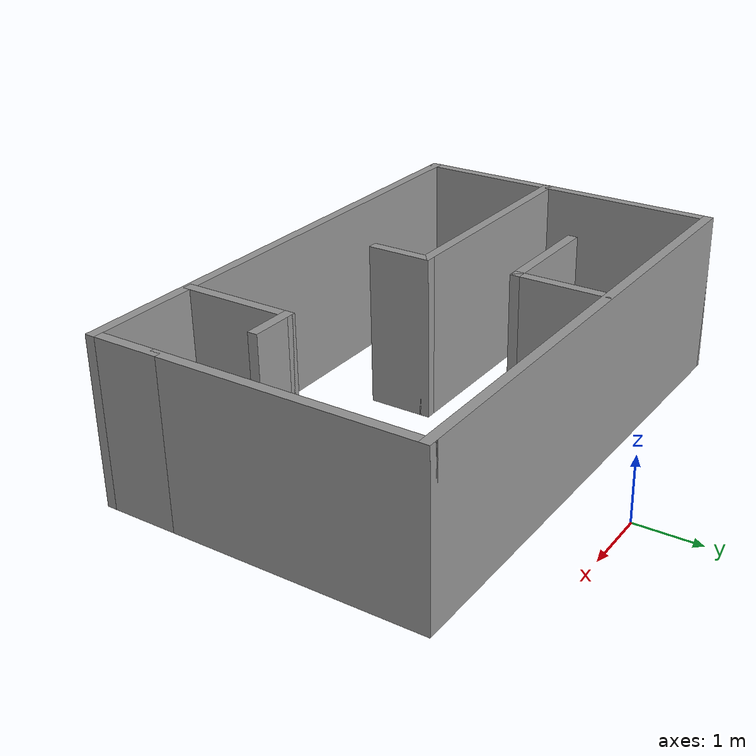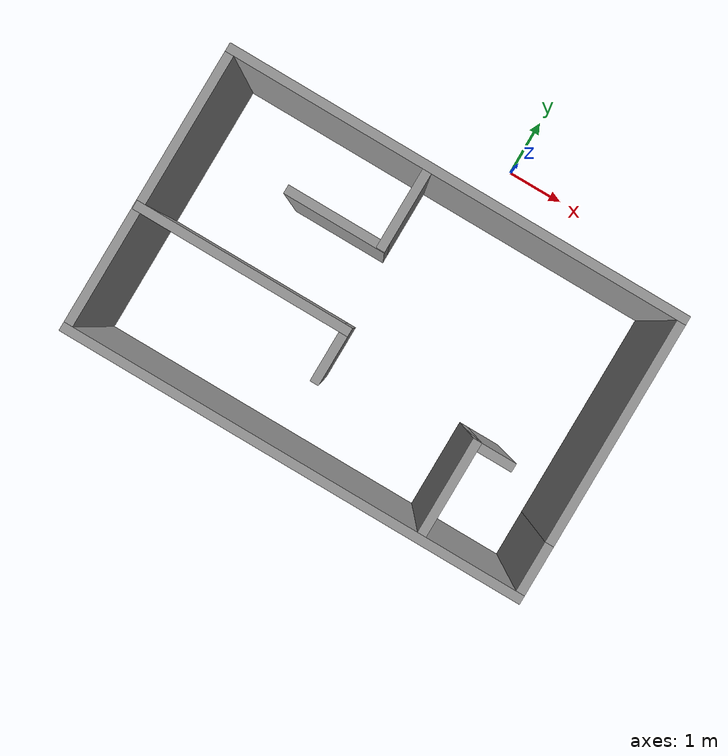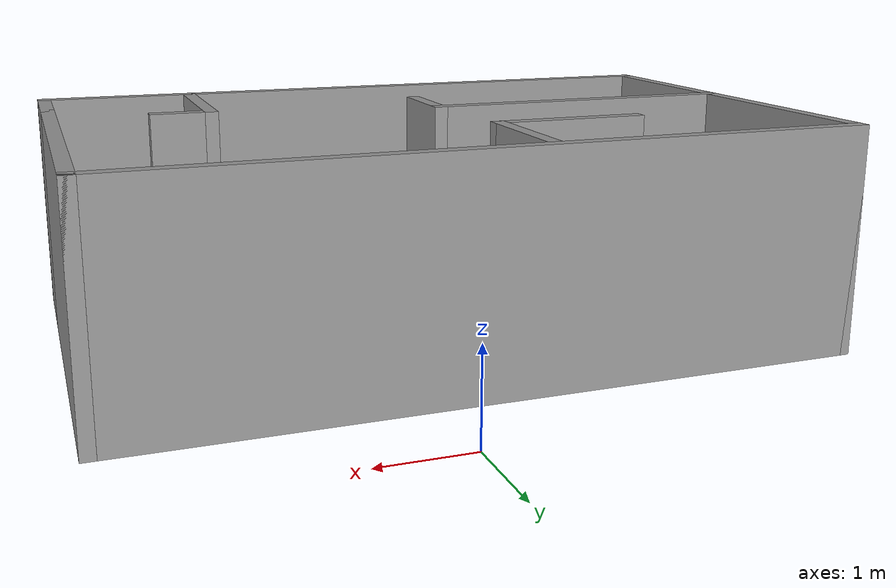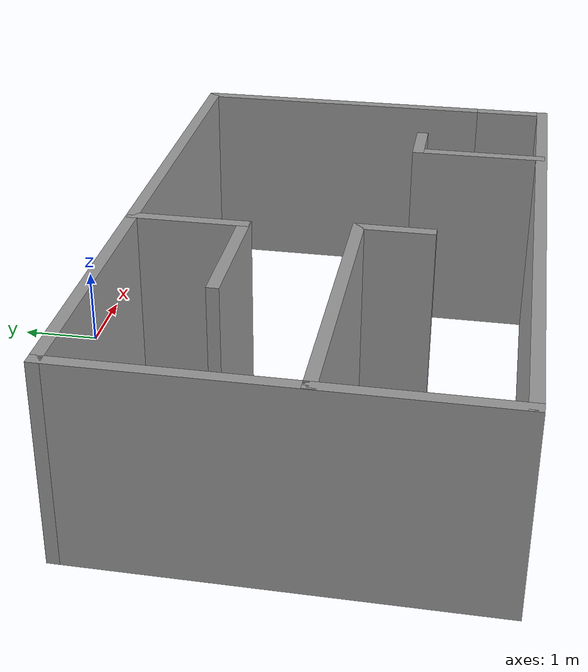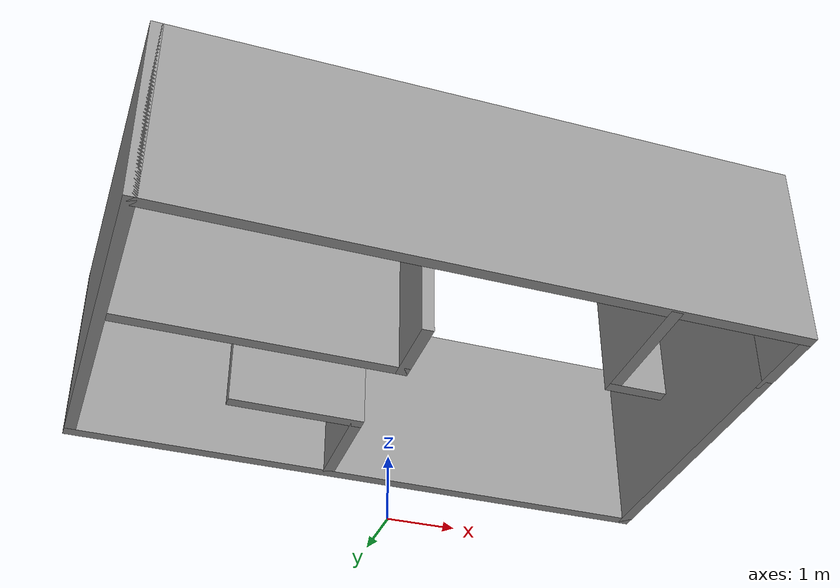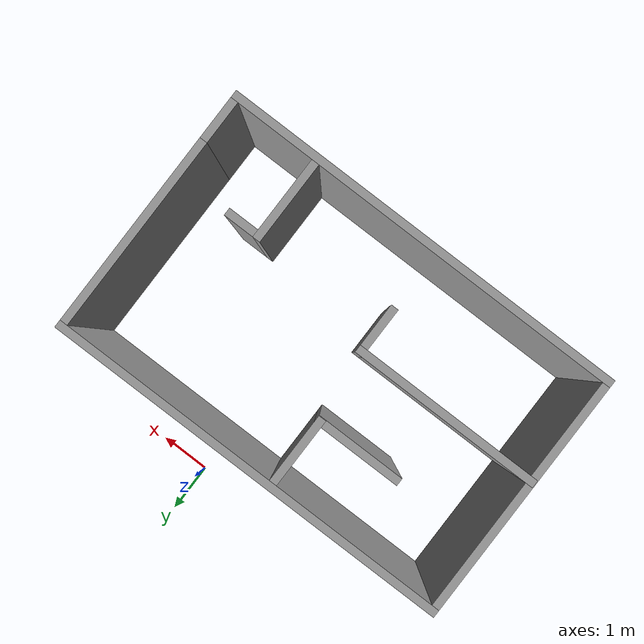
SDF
<?xml version='1.0'?>
<sdf version='1.7'>
  <model name='room'>
    <pose>-0.685 -2.9725 0 0 -0 0</pose>
    <link name='Wall_1'>
      <collision name='Wall_1_Collision'>
        <geometry>
          <box>
            <size>8 0.15 2.5</size>
          </box>
        </geometry>
        <pose>0 0 1.25 0 -0 0</pose>
      </collision>
      <visual name='Wall_1_Visual'>
        <pose>0 0 1.25 0 -0 0</pose>
        <geometry>
          <box>
            <size>8 0.15 2.5</size>
          </box>
        </geometry>
        <material>
          <script>
            <uri>file://media/materials/scripts/gazebo.material</uri>
            <name>Gazebo/Grey</name>
          </script>
          <ambient>1 1 1 1</ambient>
        </material>
        <meta>
          <layer>0</layer>
        </meta>
      </visual>
      <pose>0 1.9525 0 0 -0 0</pose>
    </link>
    <link name='Wall_10'>
      <collision name='Wall_10_Collision'>
        <geometry>
          <box>
            <size>8 0.15 2.5</size>
          </box>
        </geometry>
        <pose>0 0 1.25 0 -0 0</pose>
      </collision>
      <visual name='Wall_10_Visual'>
        <pose>0 0 1.25 0 -0 0</pose>
        <geometry>
          <box>
            <size>8 0.15 2.5</size>
          </box>
        </geometry>
        <material>
          <script>
            <uri>file://media/materials/scripts/gazebo.material</uri>
            <name>Gazebo/Grey</name>
          </script>
          <ambient>1 1 1 1</ambient>
        </material>
        <meta>
          <layer>0</layer>
        </meta>
      </visual>
      <pose>0 -2.8975 0 0 -0 0</pose>
    </link>
    <link name='Wall_12'>
      <collision name='Wall_12_Collision'>
        <geometry>
          <box>
            <size>1.5 0.15 2.5</size>
          </box>
        </geometry>
        <pose>0 0 1.25 0 -0 0</pose>
      </collision>
      <visual name='Wall_12_Visual'>
        <pose>0 0 1.25 0 -0 0</pose>
        <geometry>
          <box>
            <size>1.5 0.15 2.5</size>
          </box>
        </geometry>
        <material>
          <script>
            <uri>file://media/materials/scripts/gazebo.material</uri>
            <name>Gazebo/Grey</name>
          </script>
          <ambient>1 1 1 1</ambient>
        </material>
        <meta>
          <layer>0</layer>
        </meta>
      </visual>
      <pose>-0.49194 1.26027 0 0 -0 -1.5708</pose>
    </link>
    <link name='Wall_13'>
      <collision name='Wall_13_Collision'>
        <geometry>
          <box>
            <size>1.75 0.15 2.5</size>
          </box>
        </geometry>
        <pose>0 0 1.25 0 -0 0</pose>
      </collision>
      <visual name='Wall_13_Visual'>
        <pose>0 0 1.25 0 -0 0</pose>
        <geometry>
          <box>
            <size>1.75 0.15 2.5</size>
          </box>
        </geometry>
        <material>
          <script>
            <uri>file://media/materials/scripts/gazebo.material</uri>
            <name>Gazebo/Grey</name>
          </script>
          <ambient>1 1 1 1</ambient>
        </material>
        <meta>
          <layer>0</layer>
        </meta>
      </visual>
      <pose>-1.29194 0.575271 0 0 -0 3.14159</pose>
    </link>
    <link name='Wall_15'>
      <collision name='Wall_15_Collision'>
        <geometry>
          <box>
            <size>3.7413 0.15 2.5</size>
          </box>
        </geometry>
        <pose>0 0 1.25 0 -0 0</pose>
      </collision>
      <visual name='Wall_15_Visual'>
        <pose>0 0 1.25 0 -0 0</pose>
        <geometry>
          <box>
            <size>3.7413 0.15 2.5</size>
          </box>
        </geometry>
        <material>
          <script>
            <uri>file://media/materials/scripts/gazebo.material</uri>
            <name>Gazebo/Grey</name>
          </script>
          <ambient>1 1 1 1</ambient>
        </material>
        <meta>
          <layer>0</layer>
        </meta>
      </visual>
      <pose>-2.11822 -0.777512 0 0 -0 0</pose>
    </link>
    <link name='Wall_16'>
      <collision name='Wall_16_Collision'>
        <geometry>
          <box>
            <size>1 0.15 2.5</size>
          </box>
        </geometry>
        <pose>0 0 1.25 0 -0 0</pose>
      </collision>
      <visual name='Wall_16_Visual'>
        <pose>0 0 1.25 0 -0 0</pose>
        <geometry>
          <box>
            <size>1 0.15 2.5</size>
          </box>
        </geometry>
        <material>
          <script>
            <uri>file://media/materials/scripts/gazebo.material</uri>
            <name>Gazebo/Grey</name>
          </script>
          <ambient>1 1 1 1</ambient>
        </material>
        <meta>
          <layer>0</layer>
        </meta>
      </visual>
      <pose>-0.32257 -1.20251 0 0 -0 -1.5708</pose>
    </link>
    <link name='Wall_18'>
      <collision name='Wall_18_Collision'>
        <geometry>
          <box>
            <size>1.75 0.15 2.5</size>
          </box>
        </geometry>
        <pose>0 0 1.25 0 -0 0</pose>
      </collision>
      <visual name='Wall_18_Visual'>
        <pose>0 0 1.25 0 -0 0</pose>
        <geometry>
          <box>
            <size>1.75 0.15 2.5</size>
          </box>
        </geometry>
        <material>
          <script>
            <uri>file://media/materials/scripts/gazebo.material</uri>
            <name>Gazebo/Grey</name>
          </script>
          <ambient>1 1 1 1</ambient>
        </material>
        <meta>
          <layer>0</layer>
        </meta>
      </visual>
      <pose>2.21348 -2.06313 0 0 -0 1.5708</pose>
    </link>
    <link name='Wall_19'>
      <collision name='Wall_19_Collision'>
        <geometry>
          <box>
            <size>0.75 0.15 2.5</size>
          </box>
        </geometry>
        <pose>0 0 1.25 0 -0 0</pose>
      </collision>
      <visual name='Wall_19_Visual'>
        <pose>0 0 1.25 0 -0 0</pose>
        <geometry>
          <box>
            <size>0.75 0.15 2.5</size>
          </box>
        </geometry>
        <material>
          <script>
            <uri>file://media/materials/scripts/gazebo.material</uri>
            <name>Gazebo/Grey</name>
          </script>
          <ambient>1 1 1 1</ambient>
        </material>
        <meta>
          <layer>0</layer>
        </meta>
      </visual>
      <pose>2.51348 -1.26313 0 0 -0 0</pose>
    </link>
    <link name='Wall_3'>
      <collision name='Wall_3_Collision'>
        <geometry>
          <box>
            <size>4 0.15 2.5</size>
          </box>
        </geometry>
        <pose>0 0 1.25 0 -0 0</pose>
      </collision>
      <visual name='Wall_3_Visual'>
        <pose>0 0 1.25 0 -0 0</pose>
        <geometry>
          <box>
            <size>4 0.15 2.5</size>
          </box>
        </geometry>
        <material>
          <script>
            <uri>file://media/materials/scripts/gazebo.material</uri>
            <name>Gazebo/Grey</name>
          </script>
          <ambient>1 1 1 1</ambient>
        </material>
        <meta>
          <layer>0</layer>
        </meta>
      </visual>
      <pose>3.925 0.0275 0 0 -0 -1.5708</pose>
    </link>
    <link name='Wall_5'>
      <collision name='Wall_5_Collision'>
        <geometry>
          <box>
            <size>1 0.15 2.5</size>
          </box>
        </geometry>
        <pose>0 0 1.25 0 -0 0</pose>
      </collision>
      <visual name='Wall_5_Visual'>
        <pose>0 0 1.25 0 -0 0</pose>
        <geometry>
          <box>
            <size>1 0.15 2.5</size>
          </box>
        </geometry>
        <material>
          <script>
            <uri>file://media/materials/scripts/gazebo.material</uri>
            <name>Gazebo/Grey</name>
          </script>
          <ambient>1 1 1 1</ambient>
        </material>
        <meta>
          <layer>0</layer>
        </meta>
      </visual>
      <pose>3.925 -2.3225 0 0 -0 -1.5708</pose>
    </link>
    <link name='Wall_9'>
      <collision name='Wall_9_Collision'>
        <geometry>
          <box>
            <size>5 0.15 2.5</size>
          </box>
        </geometry>
        <pose>0 0 1.25 0 -0 0</pose>
      </collision>
      <visual name='Wall_9_Visual'>
        <pose>0 0 1.25 0 -0 0</pose>
        <geometry>
          <box>
            <size>5 0.15 2.5</size>
          </box>
        </geometry>
        <material>
          <script>
            <uri>file://media/materials/scripts/gazebo.material</uri>
            <name>Gazebo/Grey</name>
          </script>
          <ambient>1 1 1 1</ambient>
        </material>
        <meta>
          <layer>0</layer>
        </meta>
      </visual>
      <pose>-3.925 -0.4725 0 0 -0 -1.5708</pose>
    </link>
    <static>1</static>
  </model>
</sdf>
